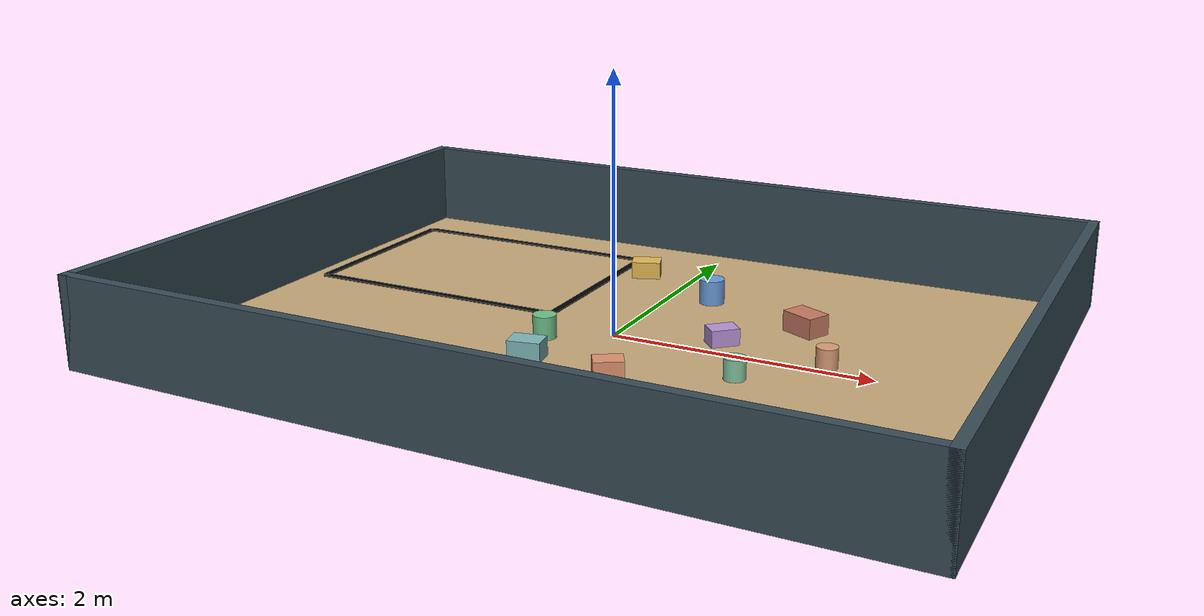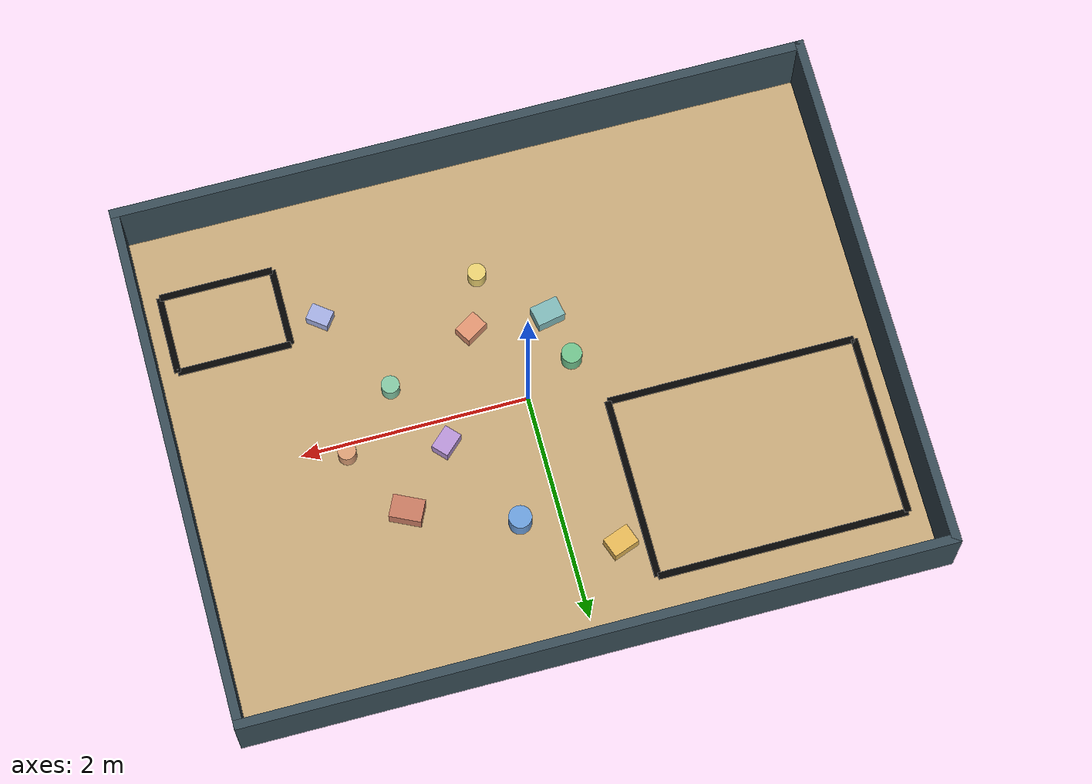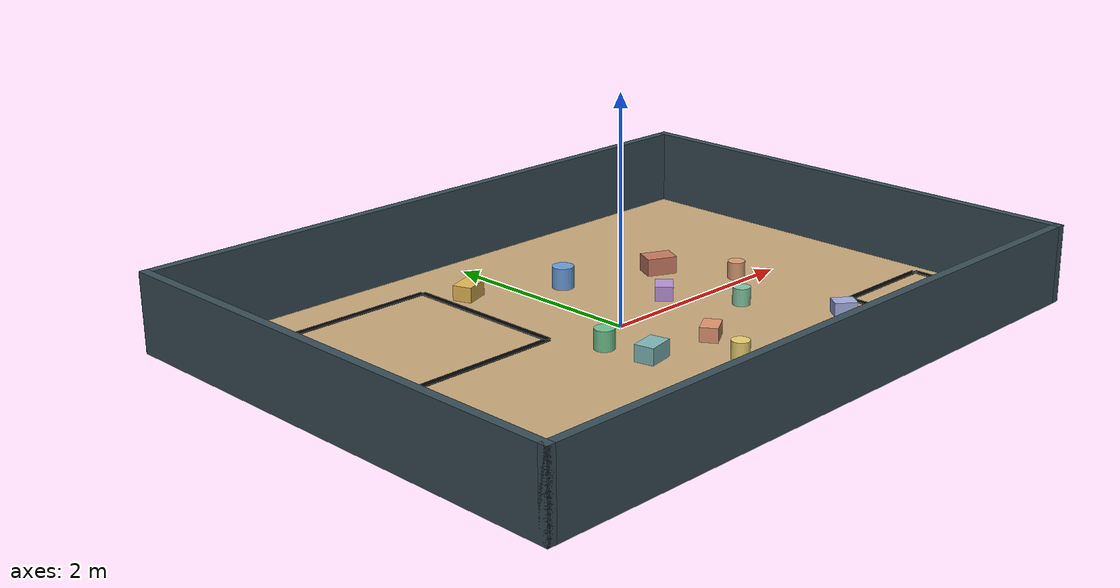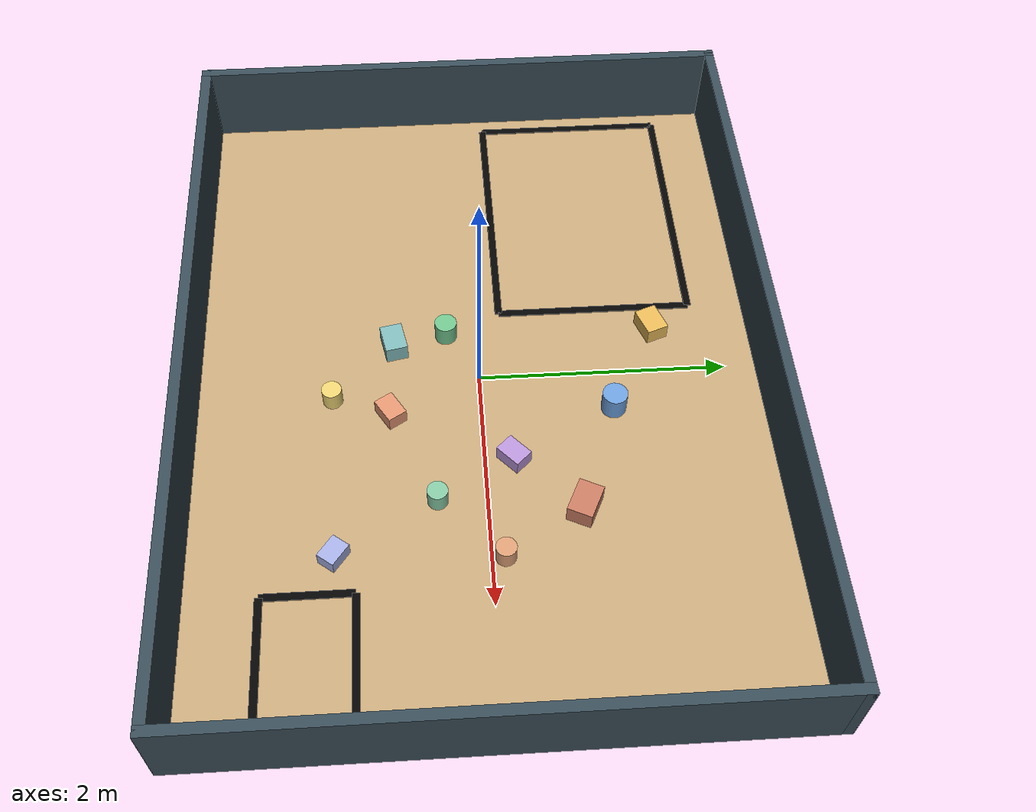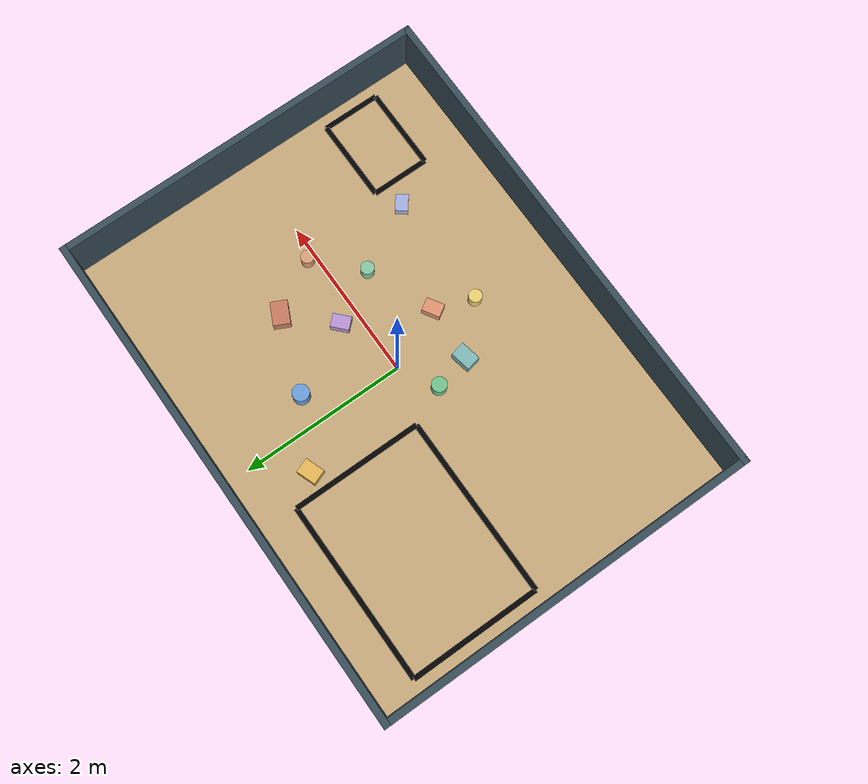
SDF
<sdf version="1.6">
 <world name="spatial_ai_station">
  <gravity>0 0 -9.8066</gravity>
  <physics name="default_physics" type="ode">
   <max_step_size>0.001</max_step_size>
   <real_time_factor>1.0</real_time_factor>
   <real_time_update_rate>1000</real_time_update_rate>
  </physics>
  <scene>
   <ambient>0.62 0.64 0.66 1</ambient>
   <background>0.78 0.84 0.88 1</background>
   <shadows>true</shadows>
  </scene>
  <light name="sun" type="directional">
   <pose>0 0 10 0 0 0</pose>
   <diffuse>0.82 0.82 0.78 1</diffuse>
   <specular>0.25 0.25 0.25 1</specular>
   <direction>-0.35 0.25 -1</direction>
  </light>
  <model name="spatial_ai_room">
   <static>true</static>
   <link name="floor">
    <pose>0 0 -0.01 0 0 0</pose>
    <collision name="collision"><geometry><box><size>6.0 4.5 0.02</size></box></geometry></collision>
    <visual name="visual">
     <geometry><box><size>6.0 4.5 0.02</size></box></geometry>
     <material><ambient>0.78 0.66 0.48 1</ambient><diffuse>0.78 0.66 0.48 1</diffuse></material>
    </visual>
   </link>
   <link name="west_wall">
    <pose>-3.04 0 0.35 0 0 0</pose>
    <collision name="collision"><geometry><box><size>0.08 4.66 0.7</size></box></geometry></collision>
    <visual name="visual">
     <geometry><box><size>0.08 4.66 0.7</size></box></geometry>
     <material><ambient>0.22 0.30 0.34 1</ambient><diffuse>0.22 0.30 0.34 1</diffuse></material>
    </visual>
   </link>
   <link name="east_wall">
    <pose>3.04 0 0.35 0 0 0</pose>
    <collision name="collision"><geometry><box><size>0.08 4.66 0.7</size></box></geometry></collision>
    <visual name="visual">
     <geometry><box><size>0.08 4.66 0.7</size></box></geometry>
     <material><ambient>0.22 0.30 0.34 1</ambient><diffuse>0.22 0.30 0.34 1</diffuse></material>
    </visual>
   </link>
   <link name="south_wall">
    <pose>0 -2.29 0.35 0 0 0</pose>
    <collision name="collision"><geometry><box><size>6.16 0.08 0.7</size></box></geometry></collision>
    <visual name="visual">
     <geometry><box><size>6.16 0.08 0.7</size></box></geometry>
     <material><ambient>0.22 0.30 0.34 1</ambient><diffuse>0.22 0.30 0.34 1</diffuse></material>
    </visual>
   </link>
   <link name="north_wall">
    <pose>0 2.29 0.35 0 0 0</pose>
    <collision name="collision"><geometry><box><size>6.16 0.08 0.7</size></box></geometry></collision>
    <visual name="visual">
     <geometry><box><size>6.16 0.08 0.7</size></box></geometry>
     <material><ambient>0.22 0.30 0.34 1</ambient><diffuse>0.22 0.30 0.34 1</diffuse></material>
    </visual>
   </link>
   <link name="source_station_a_tape_north">
    <pose>-1.75 1.8 0.012 0 0 0</pose>
    <visual name="visual">
     <geometry><box><size>2.2 0.06 0.01</size></box></geometry>
     <material><ambient>0.01 0.01 0.01 1</ambient><diffuse>0.01 0.01 0.01 1</diffuse></material>
    </visual>
   </link>
   <link name="source_station_a_tape_south">
    <pose>-1.75 0.2 0.012 0 0 0</pose>
    <visual name="visual">
     <geometry><box><size>2.2 0.06 0.01</size></box></geometry>
     <material><ambient>0.01 0.01 0.01 1</ambient><diffuse>0.01 0.01 0.01 1</diffuse></material>
    </visual>
   </link>
   <link name="source_station_a_tape_west">
    <pose>-2.85 1.0 0.012 0 0 0</pose>
    <visual name="visual">
     <geometry><box><size>0.06 1.6 0.01</size></box></geometry>
     <material><ambient>0.01 0.01 0.01 1</ambient><diffuse>0.01 0.01 0.01 1</diffuse></material>
    </visual>
   </link>
   <link name="source_station_a_tape_east">
    <pose>-0.65 1.0 0.012 0 0 0</pose>
    <visual name="visual">
     <geometry><box><size>0.06 1.6 0.01</size></box></geometry>
     <material><ambient>0.01 0.01 0.01 1</ambient><diffuse>0.01 0.01 0.01 1</diffuse></material>
    </visual>
   </link>
   <link name="destination_station_b_tape_north">
    <pose>2.35 -1.0 0.012 0 0 0</pose>
    <visual name="visual">
     <geometry><box><size>1.0 0.06 0.01</size></box></geometry>
     <material><ambient>0.01 0.01 0.01 1</ambient><diffuse>0.01 0.01 0.01 1</diffuse></material>
    </visual>
   </link>
   <link name="destination_station_b_tape_south">
    <pose>2.35 -1.7 0.012 0 0 0</pose>
    <visual name="visual">
     <geometry><box><size>1.0 0.06 0.01</size></box></geometry>
     <material><ambient>0.01 0.01 0.01 1</ambient><diffuse>0.01 0.01 0.01 1</diffuse></material>
    </visual>
   </link>
   <link name="destination_station_b_tape_west">
    <pose>1.85 -1.35 0.012 0 0 0</pose>
    <visual name="visual">
     <geometry><box><size>0.06 0.7 0.01</size></box></geometry>
     <material><ambient>0.01 0.01 0.01 1</ambient><diffuse>0.01 0.01 0.01 1</diffuse></material>
    </visual>
   </link>
   <link name="destination_station_b_tape_east">
    <pose>2.85 -1.35 0.012 0 0 0</pose>
    <visual name="visual">
     <geometry><box><size>0.06 0.7 0.01</size></box></geometry>
     <material><ambient>0.01 0.01 0.01 1</ambient><diffuse>0.01 0.01 0.01 1</diffuse></material>
    </visual>
   </link>
  </model>
  <model name="route_obstacle_box_1">
   <static>true</static>
   <pose>-0.42 1.45 0.07 0 0 0.35</pose>
   <link name="link">
    <collision name="collision"><geometry><box><size>0.24 0.18 0.14</size></box></geometry></collision>
    <visual name="visual">
     <geometry><box><size>0.24 0.18 0.14</size></box></geometry>
     <material><ambient>0.90 0.72 0.34 1</ambient><diffuse>0.90 0.72 0.34 1</diffuse></material>
    </visual>
   </link>
  </model>
  <model name="route_obstacle_cylinder_1">
   <static>true</static>
   <pose>0.35 1.05 0.10 0 0 0</pose>
   <link name="link">
    <collision name="collision">
     <geometry><cylinder><radius>0.10</radius><length>0.20</length></cylinder></geometry>
    </collision>
    <visual name="visual">
     <geometry><cylinder><radius>0.10</radius><length>0.20</length></cylinder></geometry>
     <material><ambient>0.42 0.62 0.86 1</ambient><diffuse>0.42 0.62 0.86 1</diffuse></material>
    </visual>
   </link>
  </model>
  <model name="route_obstacle_box_2">
   <static>true</static>
   <pose>1.25 0.72 0.08 0 0 -0.45</pose>
   <link name="link">
    <collision name="collision"><geometry><box><size>0.28 0.20 0.16</size></box></geometry></collision>
    <visual name="visual">
     <geometry><box><size>0.28 0.20 0.16</size></box></geometry>
     <material><ambient>0.78 0.48 0.38 1</ambient><diffuse>0.78 0.48 0.38 1</diffuse></material>
    </visual>
   </link>
  </model>
  <model name="route_obstacle_cylinder_2">
   <static>true</static>
   <pose>-0.45 -0.25 0.09 0 0 0</pose>
   <link name="link">
    <collision name="collision">
     <geometry><cylinder><radius>0.09</radius><length>0.18</length></cylinder></geometry>
    </collision>
    <visual name="visual">
     <geometry><cylinder><radius>0.09</radius><length>0.18</length></cylinder></geometry>
     <material><ambient>0.44 0.76 0.55 1</ambient><diffuse>0.44 0.76 0.55 1</diffuse></material>
    </visual>
   </link>
  </model>
  <model name="route_obstacle_box_3">
   <static>true</static>
   <pose>0.78 0.22 0.065 0 0 0.75</pose>
   <link name="link">
    <collision name="collision"><geometry><box><size>0.22 0.16 0.13</size></box></geometry></collision>
    <visual name="visual">
     <geometry><box><size>0.22 0.16 0.13</size></box></geometry>
     <material><ambient>0.72 0.58 0.84 1</ambient><diffuse>0.72 0.58 0.84 1</diffuse></material>
    </visual>
   </link>
  </model>
  <model name="route_obstacle_cylinder_3">
   <static>true</static>
   <pose>1.62 0.10 0.08 0 0 0</pose>
   <link name="link">
    <collision name="collision">
     <geometry><cylinder><radius>0.08</radius><length>0.16</length></cylinder></geometry>
    </collision>
    <visual name="visual">
     <geometry><cylinder><radius>0.08</radius><length>0.16</length></cylinder></geometry>
     <material><ambient>0.86 0.62 0.46 1</ambient><diffuse>0.86 0.62 0.46 1</diffuse></material>
    </visual>
   </link>
  </model>
  <model name="route_obstacle_box_4">
   <static>true</static>
   <pose>-0.35 -0.68 0.075 0 0 0.20</pose>
   <link name="link">
    <collision name="collision"><geometry><box><size>0.25 0.18 0.15</size></box></geometry></collision>
    <visual name="visual">
     <geometry><box><size>0.25 0.18 0.15</size></box></geometry>
     <material><ambient>0.50 0.72 0.72 1</ambient><diffuse>0.50 0.72 0.72 1</diffuse></material>
    </visual>
   </link>
  </model>
  <model name="route_obstacle_cylinder_4">
   <static>true</static>
   <pose>0.15 -1.18 0.08 0 0 0</pose>
   <link name="link">
    <collision name="collision">
     <geometry><cylinder><radius>0.08</radius><length>0.16</length></cylinder></geometry>
    </collision>
    <visual name="visual">
     <geometry><cylinder><radius>0.08</radius><length>0.16</length></cylinder></geometry>
     <material><ambient>0.92 0.82 0.44 1</ambient><diffuse>0.92 0.82 0.44 1</diffuse></material>
    </visual>
   </link>
  </model>
  <model name="route_obstacle_box_5">
   <static>true</static>
   <pose>1.55 -1.16 0.06 0 0 -0.65</pose>
   <link name="link">
    <collision name="collision"><geometry><box><size>0.20 0.15 0.12</size></box></geometry></collision>
    <visual name="visual">
     <geometry><box><size>0.20 0.15 0.12</size></box></geometry>
     <material><ambient>0.64 0.68 0.88 1</ambient><diffuse>0.64 0.68 0.88 1</diffuse></material>
    </visual>
   </link>
  </model>
  <model name="route_obstacle_box_6">
   <static>true</static>
   <pose>0.32 -0.72 0.065 0 0 0.55</pose>
   <link name="link">
    <collision name="collision"><geometry><box><size>0.22 0.16 0.13</size></box></geometry></collision>
    <visual name="visual">
     <geometry><box><size>0.22 0.16 0.13</size></box></geometry>
     <material><ambient>0.88 0.58 0.44 1</ambient><diffuse>0.88 0.58 0.44 1</diffuse></material>
    </visual>
   </link>
  </model>
  <model name="route_obstacle_cylinder_5">
   <static>true</static>
   <pose>1.12 -0.38 0.08 0 0 0</pose>
   <link name="link">
    <collision name="collision">
     <geometry><cylinder><radius>0.08</radius><length>0.16</length></cylinder></geometry>
    </collision>
    <visual name="visual">
     <geometry><cylinder><radius>0.08</radius><length>0.16</length></cylinder></geometry>
     <material><ambient>0.52 0.78 0.64 1</ambient><diffuse>0.52 0.78 0.64 1</diffuse></material>
    </visual>
   </link>
  </model>
 </world>
</sdf>
